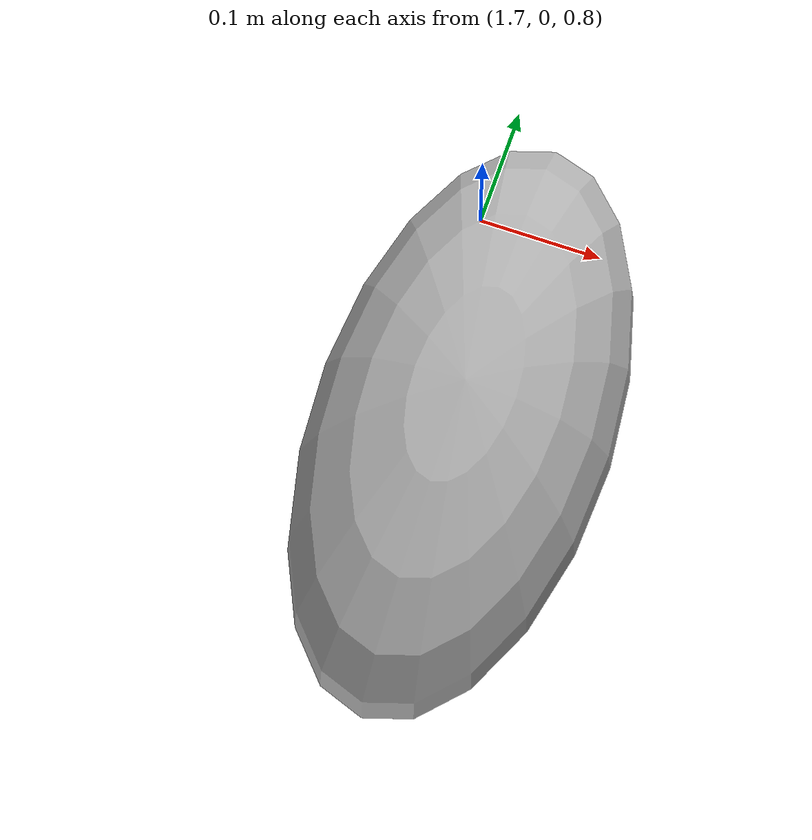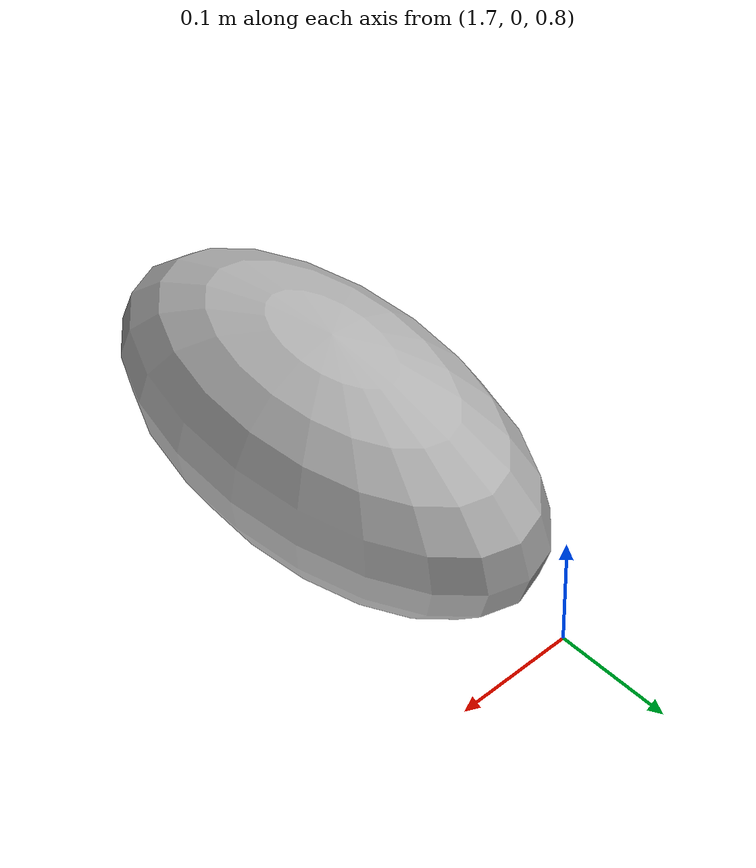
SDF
<?xml version="1.0" ?>
<sdf version="1.9">
  <world name="myworld">

  <physics type="ode">
    <max_step_size>0.004</max_step_size>
    <real_time_update_rate>250</real_time_update_rate>
  </physics>

    <gravity>0 0 0</gravity>

    <light type="directional" name="sun">
      <cast_shadows>true</cast_shadows>
      <pose>0 0 10 0 0 0</pose>
      <diffuse>0.8 0.8 0.8 1</diffuse>
      <specular>0.2 0.2 0.2 1</specular>
      <attenuation>
        <range>1000</range>
        <constant>0.9</constant>
        <linear>0.01</linear>
        <quadratic>0.001</quadratic>
      </attenuation>
      <direction>-0.5 0.1 -0.9</direction>
    </light>

    <model name="ground_plane">
      <static>true</static>
      <link name="link">
        <collision name="collision">
          <geometry>
            <plane>
              <normal>0 0 1</normal>
              <size>100 100</size>
            </plane>
          </geometry>
        </collision>
        <visual name="visual">
          <geometry>
            <plane>
              <normal>0 0 1</normal>
              <size>100 100</size>
            </plane>
          </geometry>
          <material>
            <ambient>0.8 0.8 0.8 1</ambient>
            <diffuse>0.8 0.8 0.8 1</diffuse>
            <specular>0.8 0.8 0.8 1</specular>
          </material>
        </visual>
      </link>
    </model>

    <model name='ellipsoid'>
     <pose>1.75066 -0.186871 0.911953 0 -0 0</pose>
      <link name='ellipsoid_link'>
        <inertial>
          <inertia>
            <ixx>0.068000000000000005</ixx>
            <ixy>0</ixy>
            <ixz>0</ixz>
            <iyy>0.058000000000000003</iyy>
            <iyz>0</iyz>
            <izz>0.025999999999999999</izz>
          </inertia>
          <mass>1</mass>
          <pose>0 0 0 0 -0 0</pose>
        </inertial>
        <collision name='ellipsoid_collision'>
          <geometry>
            <ellipsoid>
              <radii>0.01 0.2 0.02</radii>
            </ellipsoid>
          </geometry>
          <surface>
            <friction>
              <ode/>
            </friction>
            <bounce/>
            <contact/>
          </surface>
        </collision>
        <visual name='ellipsoid_visual'>
          <geometry>
            <ellipsoid>
              <radii>0.1 0.2 0.1</radii>
            </ellipsoid>
          </geometry>
          <material>
            <ambient>0.3 0.3 0.3 1</ambient>
            <diffuse>0.7 0.7 0.7 1</diffuse>
            <specular>1 1 1 1</specular>
          </material>
        </visual>
        <pose>0 0 0 0 -0 0</pose>
        <enable_wind>false</enable_wind>
      </link>
      <static>false</static>
      <self_collide>false</self_collide>
    </model>

  </world>
</sdf>
